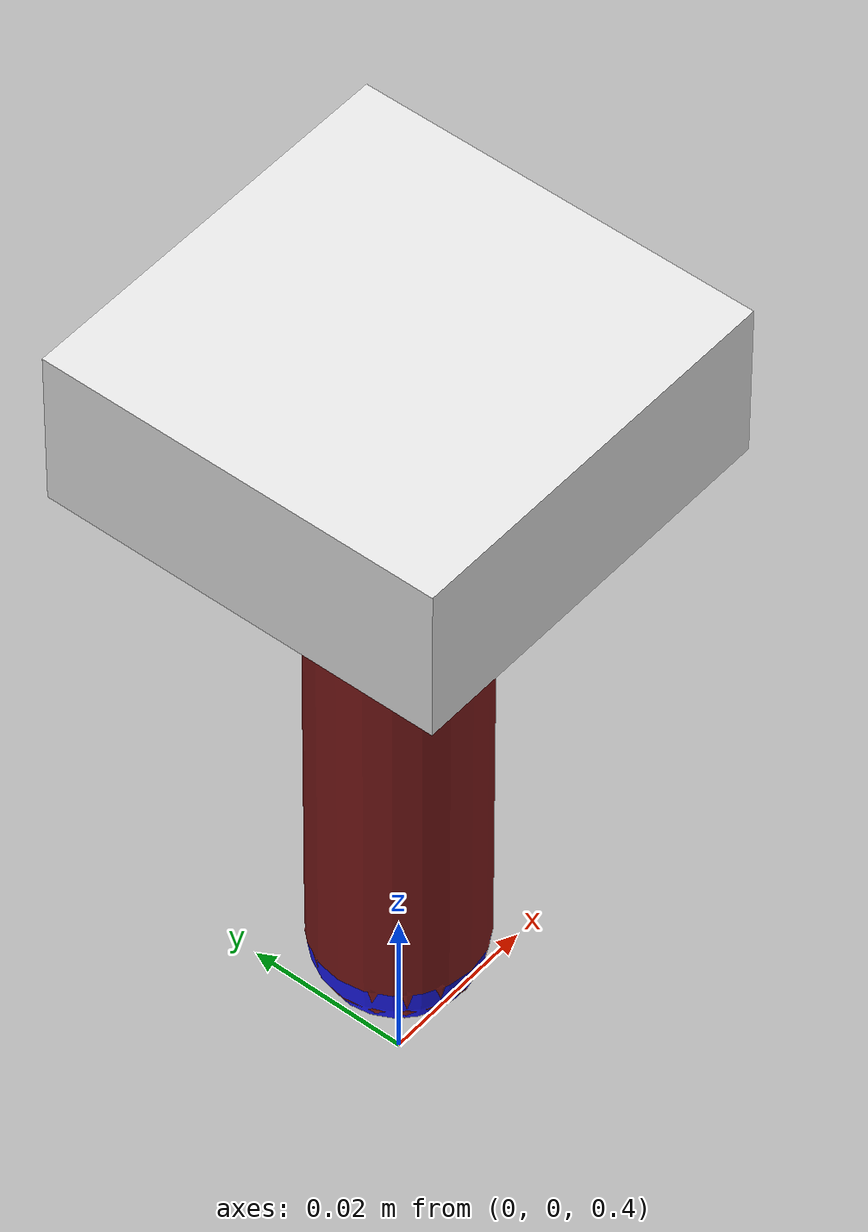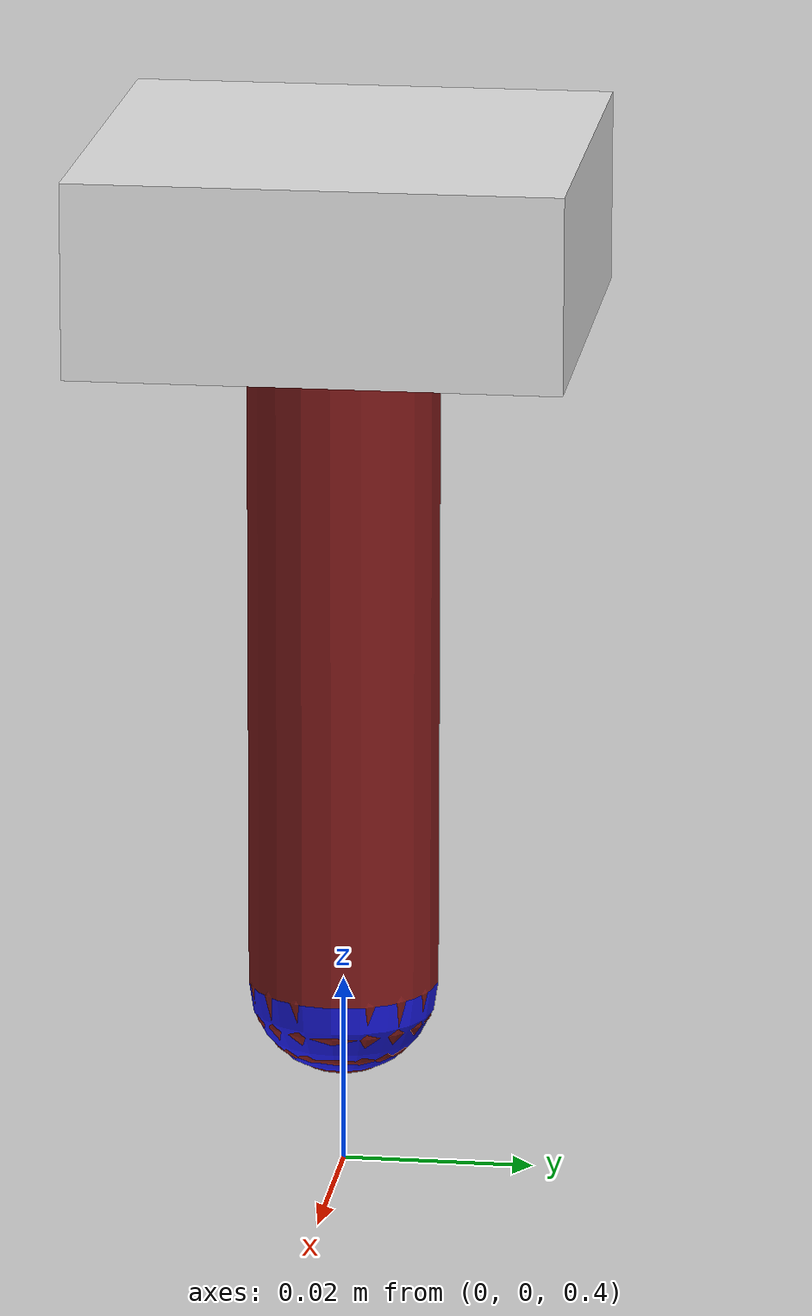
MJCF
<mujoco model='Flying_Hopper'>
	<compiler autolimits="true" />
	<visual>
		<headlight ambient="0.5 0.5 0.5" />
	</visual>

	<default>
		<motor ctrllimited="true" ctrlrange="0 0.005" forcerange="0 0.005" />
	</default>

	<option timestep="1e-4" integrator="RK4" cone='elliptic'>
		<flag energy="enable" />
	</option>
	<asset>
		<texture name="texplane" type="2d" builtin="checker" rgb1=".25 .25 .25" rgb2=".3 .3 .3"
			width="512" height="512" mark="cross" markrgb=".8 .8 .8" />

		<material name="matplane" reflectance="0.3" texture="texplane" texrepeat="1 1"
			texuniform="true" />
	</asset>
	<worldbody>
		<geom name="floor" pos="0 0 0" size="0 0 1" type="plane" material="matplane" condim="1" />

		<light directional="true" diffuse=".8 .8 .8" specular=".2 .2 .2" pos="0 0 5" dir="0 0 -1" />

		<body name="main" pos="0 0 .5">
			<freejoint />
			<geom type="box" size="25e-3 25e-3 10e-3" rgba=".9 .9 .9 1" />
			<inertial pos="0 0 0" mass="0.71875e-3" diaginertia="0.6e-7 0.6e-7 0.75e-7" />

			<site name="thrust1" pos="12.5e-3 12.5e-3 5e-3" />
			<site name="thrust2" pos="12.5e-3 -12.5e-3 5e-3" />
			<site name="thrust3" pos="-12.5e-3 12.5e-3 5e-3" />
			<site name="thrust4" pos="-12.5e-3 -12.5e-3 5e-3" />

			<body name="spring" pos="0 0 0">
				<joint name="hopper_z" type="slide" pos="0 0 0" axis="0 0 1" stiffness='70'
					damping='0' range="-1 0" />
				<geom type="capsule" size=".01" fromto="0 0 -5e-3  0 0 -.08" rgba=".5 .1 .1 1" solref="-2000 -0.01" solimp="0.9 0.9 0.01" />
				<inertial pos="0 0 -0.0425" mass="0.2e-3" diaginertia="1.36e-8 1.36e-8 0.5e-9" />
				<site name="foot_site" type="sphere" size=".01" pos="0 0 -0.08" rgba=".1 .1 .9 1" />
			</body>
		</body>
	</worldbody>

	<sensor>
		<touch name="peak_contact_sensor" site="foot_site" />
	</sensor>

	<actuator>
		<motor name="thrust1" site="thrust1" gear="0 0 1 0 0 0" />
		<motor name="thrust2" site="thrust2" gear="0 0 1 0 0 0" />
		<motor name="thrust3" site="thrust3" gear="0 0 1 0 0 0" />
		<motor name="thrust4" site="thrust4" gear="0 0 1 0 0 0" />
	</actuator>

</mujoco>
